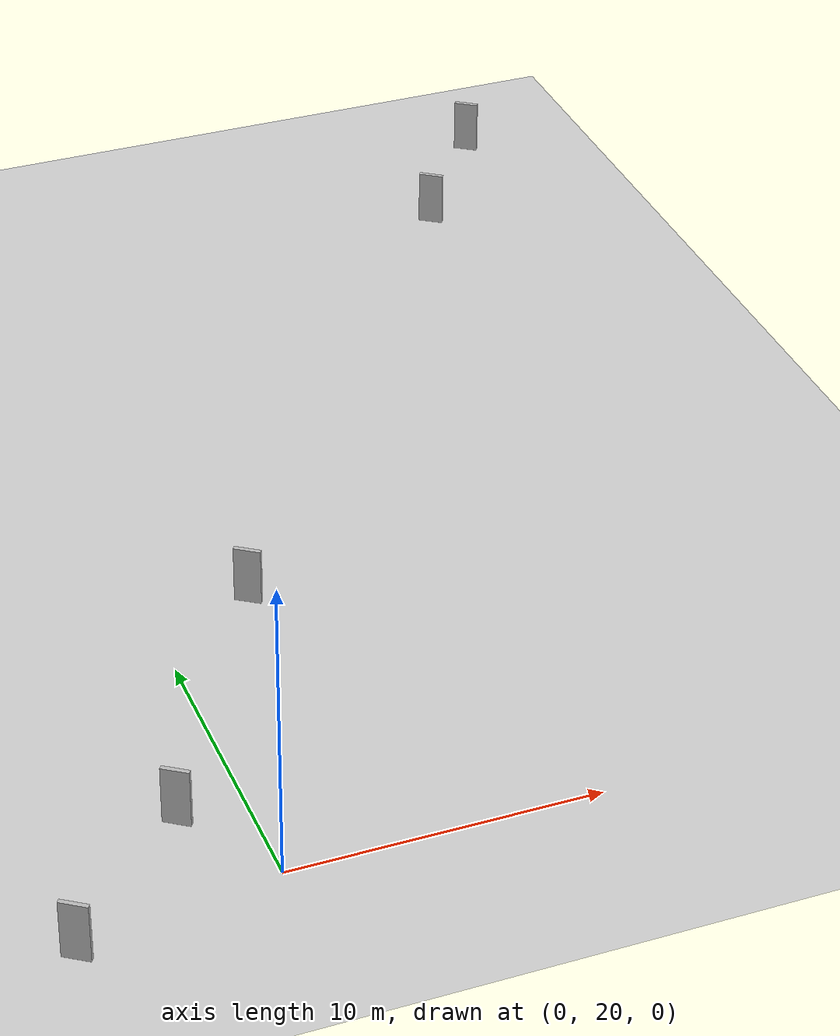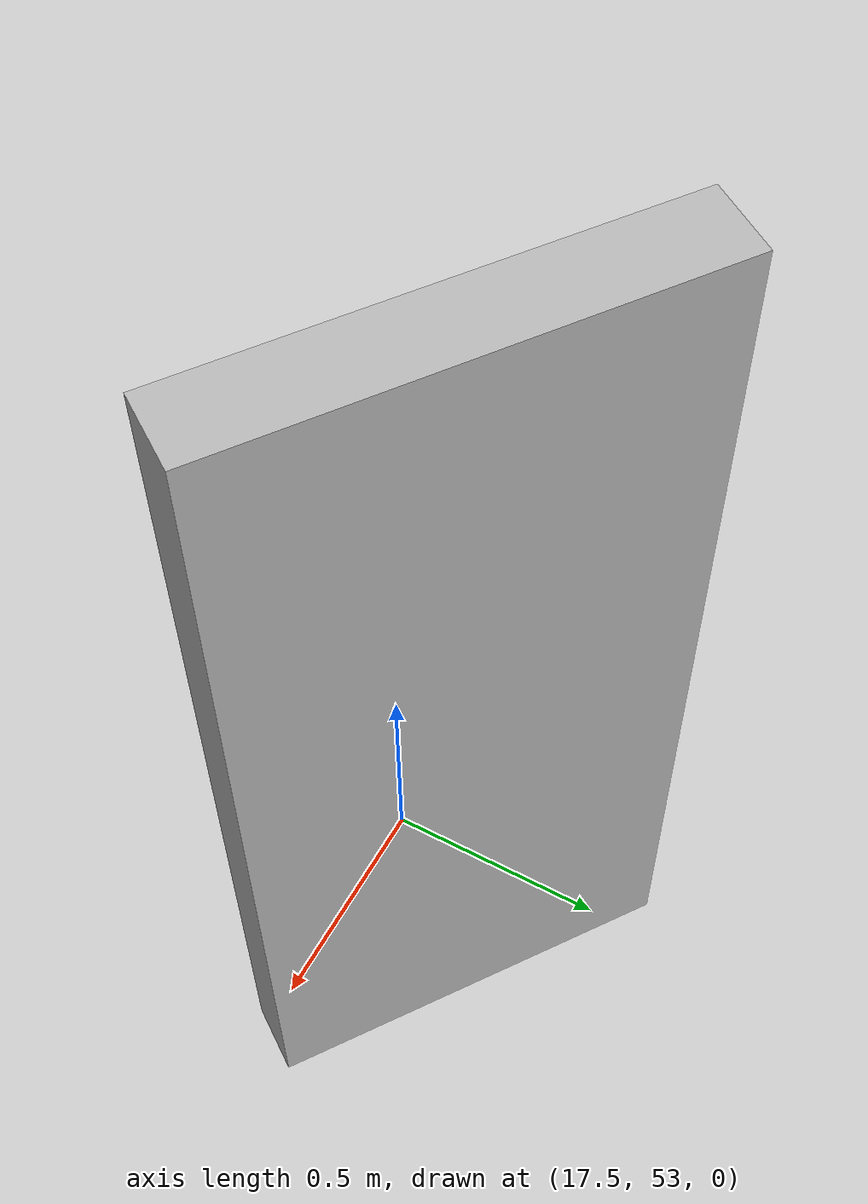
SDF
<sdf version="1.6">
 <world name="floorplan:icra_brsu_building_c_level_2_with_objects">
  <gravity>0 0 -9.8</gravity>
  <physics default="0" name="default_physics" type="ode">
   <max_step_size>0.001</max_step_size>
   <real_time_factor>1</real_time_factor>
   <real_time_update_rate>1000</real_time_update_rate>
  </physics>
  <scene><ambient>0.6 0.6 0.6 1</ambient><background>0.4 0.4 0.4 1</background><shadows>false</shadows></scene>
  <include><uri>model://sun</uri></include>
  <include><uri>model://ground_plane</uri></include>
  <include>
   <name>door-instance-2</name>
   <uri>model://door</uri>
   <static>false</static>
   <pose>-2.138249248938069 23.141551701418308 0.0 0.0 -0.0 2.5307274153917776</pose>
  </include>
  <include>
   <name>door-instance-3</name>
   <uri>model://door</uri>
   <static>false</static>
   <pose>3.2945818629993298 32.64388542051938 0.0 0.0 -0.0 2.5307274153917776</pose>
  </include>
  <include>
   <name>door-instance-4</name>
   <uri>model://door</uri>
   <static>false</static>
   <pose>17.748708059045665 53.28651693660201 0.0 0.0 -0.0 2.5307274153917776</pose>
  </include>
  <include>
   <name>door-instance-5</name>
   <uri>model://door</uri>
   <static>false</static>
   <pose>21.190166677151932 58.201429202335966 0.0 0.0 -0.0 2.5307274153917776</pose>
  </include>
  <include>
   <name>door-instance-1</name>
   <uri>model://door</uri>
   <static>false</static>
   <pose>-6.456217554968435 18.71830066760649 0.0 0.0 -0.0 2.5307274153917776</pose>
  </include>
 </world>
</sdf>

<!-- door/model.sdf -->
<sdf version='1.6'>
  <model name='door'>
    <link name='link_0'>
         <visual name='visual'>
        <pose frame=''>0 0 1 0 -0 0</pose>
        <geometry>
          <box>
            <size>0.9 0.15 2</size>
          </box>
        </geometry>
          	<material>
          <script>
            <uri>model://door/materials/scripts</uri>
            <uri>model://door/materials/textures</uri>
            <name>door</name>
          </script>
        </material>
        <cast_shadows>1</cast_shadows>
        <transparency>0</transparency>
      </visual>
      <collision name='collision'>
        <laser_retro>0</laser_retro>
        <max_contacts>10</max_contacts>
        <pose frame=''>0 0 1 0 -0 0</pose>
        <geometry>
          <box>
            <size>0.9 0.15 2</size>
          </box>
        </geometry>

      </collision>
    </link>
    <static>1</static>
    <allow_auto_disable>1</allow_auto_disable>
  </model>
</sdf>
